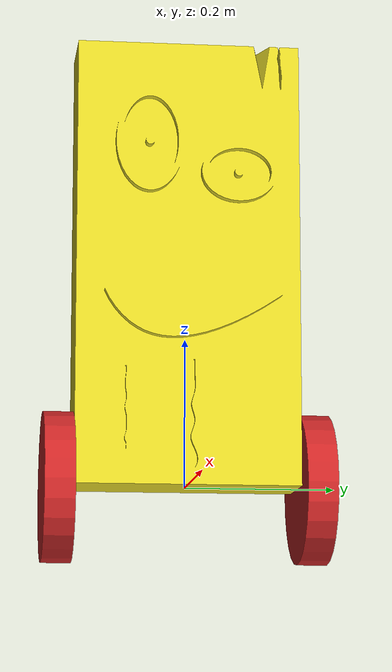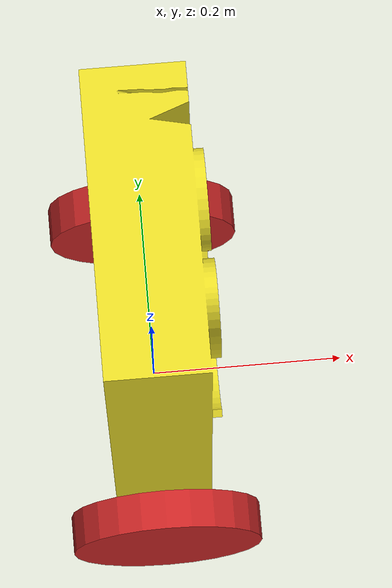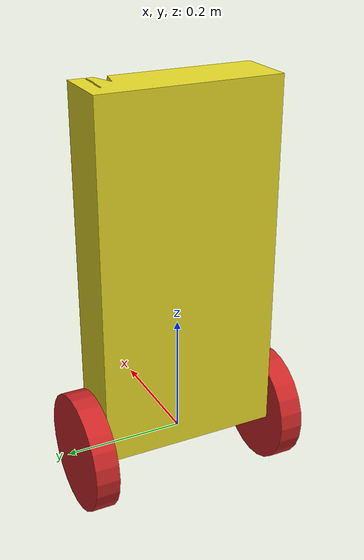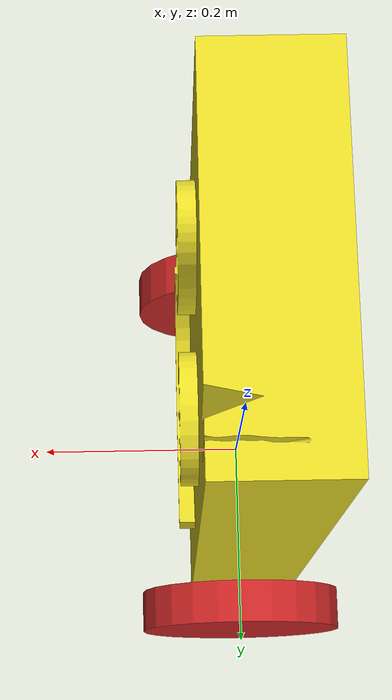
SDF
<?xml version='1.0'?>
<sdf version='1.6'>
  <model name='2wheel'>
    <link name='dummy_link'>
      <pose frame=''>0 0 0 0 -0 0</pose>
      <inertial>
        <pose frame=''>0 0 0.29997 0 -0 0</pose>
        <mass>2.0003</mass>
        <inertia>
          <ixx>0.075021</ixx>
          <ixy>0</ixy>
          <ixz>0</ixz>
          <iyy>0.061688</iyy>
          <iyz>0</iyz>
          <izz>0.016673</izz>
        </inertia>
      </inertial>
      <velocity_decay/>
      <velocity_decay/>
      <gravity>1</gravity>
      <velocity_decay/>
      <self_collide>0</self_collide>
      <enable_wind>0</enable_wind>
      <kinematic>0</kinematic>
      <visual name='dummy_link_fixed_joint_lump__link_chassis_visual'>
        <pose frame=''>0 0 0 0 -0 0</pose>
        <geometry>
          <mesh>
            <scale>1 1 1</scale>
            <uri>/home/agus/Documents/Proyectos/SelfBalancingRobot/src/robot_description/stl/Plank.stl</uri>
          </mesh>
        </geometry>
        <material>
          <script>
            <name>Gazebo/Yellow</name>
            <uri>file://media/materials/scripts/gazebo.material</uri>
          </script>
          <shader type='pixel'/>
        </material>
        <transparency>0</transparency>
        <cast_shadows>1</cast_shadows>
      </visual>
      <visual name='dummy_link_fixed_joint_lump__link_eyes_visual_1'>
        <pose frame=''>0 0 0 0 -0 0</pose>
        <geometry>
          <mesh>
            <scale>1 1 1</scale>
            <uri>/home/agus/Documents/Proyectos/SelfBalancingRobot/src/robot_description/stl/eyes.stl</uri>
          </mesh>
        </geometry>
        <material>
          <script>
            <name>Gazebo/Red</name>
            <uri>file://media/materials/scripts/gazebo.material</uri>
          </script>
          <shader type='pixel'/>
        </material>
        <transparency>0</transparency>
        <cast_shadows>1</cast_shadows>
      </visual>
      <visual name='dummy_link_fixed_joint_lump__link_mouth_visual_2'>
        <pose frame=''>0 0 0 0 -0 0</pose>
        <geometry>
          <mesh>
            <scale>1 1 1</scale>
            <uri>/home/agus/Documents/Proyectos/SelfBalancingRobot/src/robot_description/stl/mouth.stl</uri>
          </mesh>
        </geometry>
        <material>
          <script>
            <name>Gazebo/Blue</name>
            <uri>file://media/materials/scripts/gazebo.material</uri>
          </script>
          <shader type='pixel'/>
        </material>
        <transparency>0</transparency>
        <cast_shadows>1</cast_shadows>
      </visual>
      <collision name='dummy_link_fixed_joint_lump__collision_chassis_collision'>
        <laser_retro>0</laser_retro>
        <max_contacts>10</max_contacts>
        <pose frame=''>0 0 0.3 0 -0 0</pose>
        <geometry>
          <box>
            <size>0.1 0.3 0.6</size>
          </box>
        </geometry>
        <surface>
          <friction>
            <ode>
              <mu>1</mu>
              <mu2>1</mu2>
              <fdir1>0 0 0</fdir1>
              <slip1>0</slip1>
              <slip2>0</slip2>
            </ode>
            <torsional>
              <coefficient>1</coefficient>
              <patch_radius>0</patch_radius>
              <surface_radius>0</surface_radius>
              <use_patch_radius>1</use_patch_radius>
              <ode>
                <slip>0</slip>
              </ode>
            </torsional>
          </friction>
          <bounce>
            <restitution_coefficient>0</restitution_coefficient>
            <threshold>1e+06</threshold>
          </bounce>
          <contact>
            <collide_without_contact>0</collide_without_contact>
            <collide_without_contact_bitmask>1</collide_without_contact_bitmask>
            <collide_bitmask>1</collide_bitmask>
            <ode>
              <soft_cfm>0</soft_cfm>
              <soft_erp>0.2</soft_erp>
              <kp>1e+13</kp>
              <kd>1</kd>
              <max_vel>0.01</max_vel>
              <min_depth>0</min_depth>
            </ode>
            <bullet>
              <split_impulse>1</split_impulse>
              <split_impulse_penetration_threshold>-0.01</split_impulse_penetration_threshold>
              <soft_cfm>0</soft_cfm>
              <soft_erp>0.2</soft_erp>
              <kp>1e+13</kp>
              <kd>1</kd>
            </bullet>
          </contact>
        </surface>
      </collision>
    </link>
    <link name='link_left_wheel'>
      <pose frame=''>0 0.17 -0 0 -0 0</pose>
      <inertial>
        <pose frame=''>0 0 0 -0 1.5707 1.5707</pose>
        <mass>0.2</mass>
        <inertia>
          <ixx>0.001</ixx>
          <ixy>0</ixy>
          <ixz>0</ixz>
          <iyy>0.0005</iyy>
          <iyz>0</iyz>
          <izz>0.0005</izz>
        </inertia>
      </inertial>
      <gravity>1</gravity>
      <velocity_decay/>
      <self_collide>0</self_collide>
      <enable_wind>0</enable_wind>
      <kinematic>0</kinematic>
      <visual name='link_left_wheel_visual_visual'>
        <pose frame=''>0 0 0 -3.13685 1.57079 -1.56615</pose>
        <geometry>
          <cylinder>
            <length>0.04</length>
            <radius>0.1</radius>
          </cylinder>
        </geometry>
        <material>
          <script>
            <name>Gazebo/Red</name>
            <uri>file://media/materials/scripts/gazebo.material</uri>
          </script>
          <shader type='pixel'/>
        </material>
        <transparency>0</transparency>
        <cast_shadows>1</cast_shadows>
      </visual>
      <collision name='link_left_wheel_collision_collision'>
        <laser_retro>0</laser_retro>
        <max_contacts>10</max_contacts>
        <pose frame=''>0 0 0 3.14159 1.57079 -1.57089</pose>
        <geometry>
          <cylinder>
            <radius>0.1</radius>
            <length>0.04</length>
          </cylinder>
        </geometry>
        <surface>
          <friction>
            <ode>
              <mu>0.4</mu>
              <mu2>0.4</mu2>
              <fdir1>0 0 0</fdir1>
              <slip1>0</slip1>
              <slip2>0</slip2>
            </ode>
            <torsional>
              <coefficient>1</coefficient>
              <patch_radius>0</patch_radius>
              <surface_radius>0</surface_radius>
              <use_patch_radius>1</use_patch_radius>
              <ode>
                <slip>0</slip>
              </ode>
            </torsional>
          </friction>
          <bounce>
            <restitution_coefficient>0</restitution_coefficient>
            <threshold>1e+06</threshold>
          </bounce>
          <contact>
            <collide_without_contact>0</collide_without_contact>
            <collide_without_contact_bitmask>1</collide_without_contact_bitmask>
            <collide_bitmask>1</collide_bitmask>
            <ode>
              <soft_cfm>0</soft_cfm>
              <soft_erp>0.2</soft_erp>
              <kp>1e+13</kp>
              <kd>1</kd>
              <max_vel>0.01</max_vel>
              <min_depth>0</min_depth>
            </ode>
            <bullet>
              <split_impulse>1</split_impulse>
              <split_impulse_penetration_threshold>-0.01</split_impulse_penetration_threshold>
              <soft_cfm>0</soft_cfm>
              <soft_erp>0.2</soft_erp>
              <kp>1e+13</kp>
              <kd>1</kd>
            </bullet>
          </contact>
        </surface>
      </collision>
    </link>
    <link name='link_right_wheel'>
      <pose frame=''>-0 -0.17 0 0 -0 0</pose>
      <inertial>
        <pose frame=''>0 0 0 -0 1.5707 1.5707</pose>
        <mass>0.2</mass>
        <inertia>
          <ixx>0.001</ixx>
          <ixy>0</ixy>
          <ixz>0</ixz>
          <iyy>0.0005</iyy>
          <iyz>0</iyz>
          <izz>0.0005</izz>
        </inertia>
      </inertial>
      <gravity>1</gravity>
      <velocity_decay/>
      <self_collide>0</self_collide>
      <enable_wind>0</enable_wind>
      <kinematic>0</kinematic>
      <visual name='link_right_wheel_visual_visual'>
        <pose frame=''>0 0 0 -3.13685 1.57079 -1.56615</pose>
        <geometry>
          <cylinder>
            <length>0.04</length>
            <radius>0.1</radius>
          </cylinder>
        </geometry>
        <material>
          <script>
            <name>Gazebo/Red</name>
            <uri>file://media/materials/scripts/gazebo.material</uri>
          </script>
          <shader type='pixel'/>
        </material>
        <transparency>0</transparency>
        <cast_shadows>1</cast_shadows>
      </visual>
      <collision name='link_right_wheel_collision_collision'>
        <laser_retro>0</laser_retro>
        <max_contacts>10</max_contacts>
        <pose frame=''>0 0 0 3.14159 1.57079 -1.57089</pose>
        <geometry>
          <cylinder>
            <radius>0.1</radius>
            <length>0.04</length>
          </cylinder>
        </geometry>
        <surface>
          <friction>
            <ode>
              <mu>0.4</mu>
              <mu2>0.4</mu2>
              <fdir1>0 0 0</fdir1>
              <slip1>0</slip1>
              <slip2>0</slip2>
            </ode>
            <torsional>
              <coefficient>1</coefficient>
              <patch_radius>0</patch_radius>
              <surface_radius>0</surface_radius>
              <use_patch_radius>1</use_patch_radius>
              <ode>
                <slip>0</slip>
              </ode>
            </torsional>
          </friction>
          <bounce>
            <restitution_coefficient>0</restitution_coefficient>
            <threshold>1e+06</threshold>
          </bounce>
          <contact>
            <collide_without_contact>0</collide_without_contact>
            <collide_without_contact_bitmask>1</collide_without_contact_bitmask>
            <collide_bitmask>1</collide_bitmask>
            <ode>
              <soft_cfm>0</soft_cfm>
              <soft_erp>0.2</soft_erp>
              <kp>1e+13</kp>
              <kd>1</kd>
              <max_vel>0.01</max_vel>
              <min_depth>0</min_depth>
            </ode>
            <bullet>
              <split_impulse>1</split_impulse>
              <split_impulse_penetration_threshold>-0.01</split_impulse_penetration_threshold>
              <soft_cfm>0</soft_cfm>
              <soft_erp>0.2</soft_erp>
              <kp>1e+13</kp>
              <kd>1</kd>
            </bullet>
          </contact>
        </surface>
      </collision>
    </link>
    <joint name='joint_left_wheel' type='revolute'>
      <parent>dummy_link</parent>
      <child>link_left_wheel</child>
      <pose frame=''>0 0 0 0 -0 0</pose>
      <axis>
        <xyz>0 1 0</xyz>
        <use_parent_model_frame>1</use_parent_model_frame>
        <limit>
          <lower>-1e+16</lower>
          <upper>1e+16</upper>
          <effort>-1</effort>
          <velocity>-1</velocity>
        </limit>
        <dynamics>
          <spring_reference>0</spring_reference>
          <spring_stiffness>0</spring_stiffness>
          <damping>0.0005</damping>
          <friction>0.0005</friction>
        </dynamics>
      </axis>
      <physics>
        <ode>
          <limit>
            <cfm>0</cfm>
            <erp>0.2</erp>
          </limit>
          <suspension>
            <cfm>0</cfm>
            <erp>0.2</erp>
          </suspension>
        </ode>
      </physics>
    </joint>
    <joint name='joint_right_wheel' type='revolute'>
      <parent>dummy_link</parent>
      <child>link_right_wheel</child>
      <pose frame=''>0 0 0 0 -0 0</pose>
      <axis>
        <xyz>0 1 0</xyz>
        <use_parent_model_frame>1</use_parent_model_frame>
        <limit>
          <lower>-1e+16</lower>
          <upper>1e+16</upper>
          <effort>-1</effort>
          <velocity>-1</velocity>
        </limit>
        <dynamics>
          <spring_reference>0</spring_reference>
          <spring_stiffness>0</spring_stiffness>
          <damping>0.0005</damping>
          <friction>0.0005</friction>
        </dynamics>
      </axis>
      <physics>
        <ode>
          <limit>
            <cfm>0</cfm>
            <erp>0.2</erp>
          </limit>
          <suspension>
            <cfm>0</cfm>
            <erp>0.2</erp>
          </suspension>
        </ode>
      </physics>
    </joint>
    <static>0</static>
    <allow_auto_disable>1</allow_auto_disable>
    <plugin name='differential_drive_controller' filename='libgazebo_ros_diff_drive.so'>
      <legacyMode>0</legacyMode>
      <alwaysOn>1</alwaysOn>
      <updateRate>10</updateRate>
      <leftJoint>joint_left_wheel</leftJoint>
      <rightJoint>joint_right_wheel</rightJoint>
      <wheelSeparation>0.34</wheelSeparation>
      <wheelDiameter>0.2</wheelDiameter>
      <wheelTorque>0.8</wheelTorque>
      <commandTopic>cmd_vel</commandTopic>
      <odometryTopic>odom</odometryTopic>
      <odometryFrame>odom</odometryFrame>
      <robotBaseFrame>link_chassis</robotBaseFrame>
      <robotNamespace>/</robotNamespace>
    </plugin>
    <plugin name='imu_plugin' filename='libgazebo_ros_imu.so'>
      <alwaysOn>1</alwaysOn>
      <updateRate>100</updateRate>
      <bodyName>dummy_link</bodyName>
      <topicName>imu</topicName>
      <serviceName>imu_service</serviceName>
      <gaussianNoise>0.0</gaussianNoise>
      <rpyOffsets>0 0 0</rpyOffsets>
      <xyzOffset>0 0 0.3</xyzOffset>
      <accelDrift>0.5 0.5 0.5</accelDrift>
      <accelGaussianNoise>0.35 0.35 0.3</accelGaussianNoise>
      <rateDrift>0.0 0.0 0.0</rateDrift>
      <rateGaussianNoise>0.00 0.00 0.00</rateGaussianNoise>
      <headingDrift>0.0</headingDrift>
      <headingGaussianNoise>0.00</headingGaussianNoise>
      <robotNamespace>/</robotNamespace>
    </plugin>
  </model>
</sdf>
